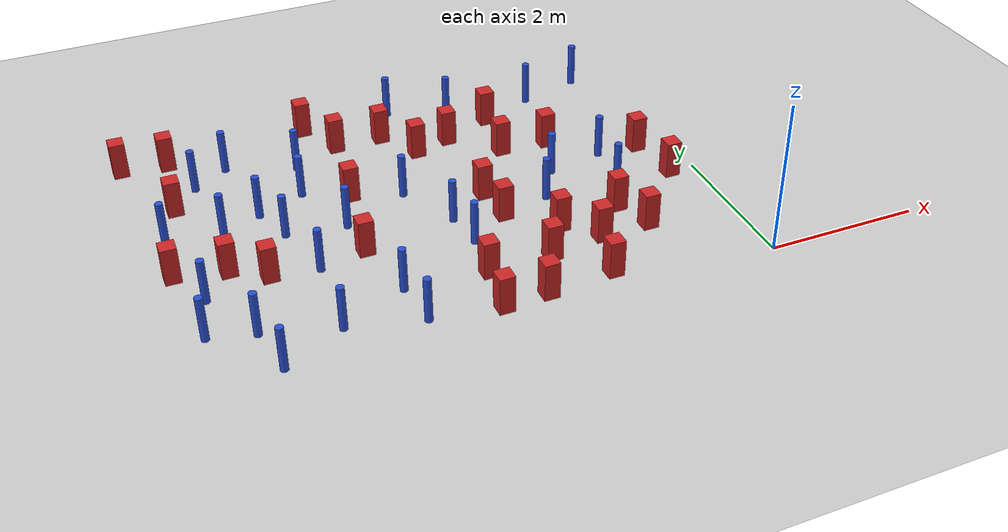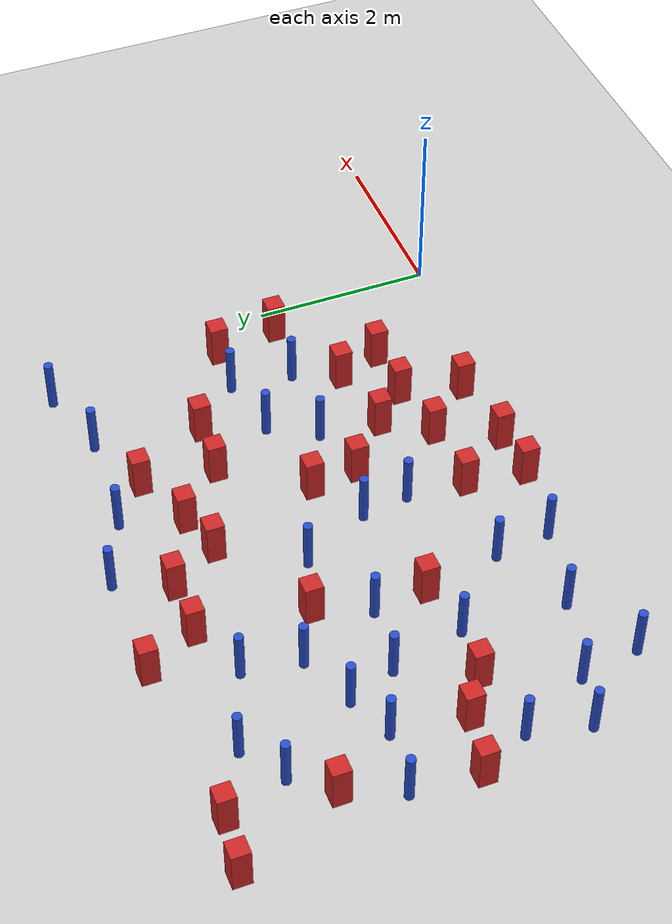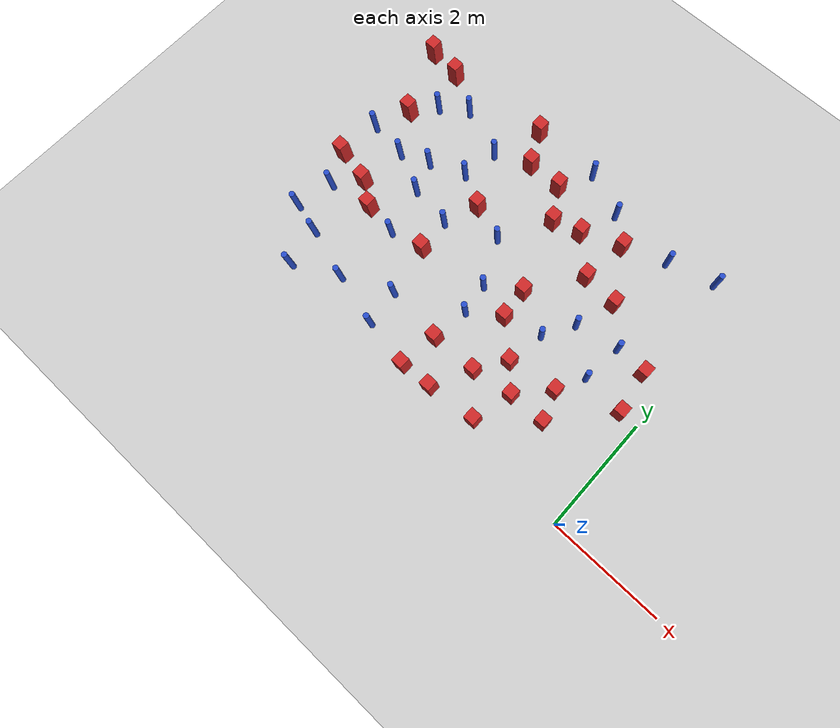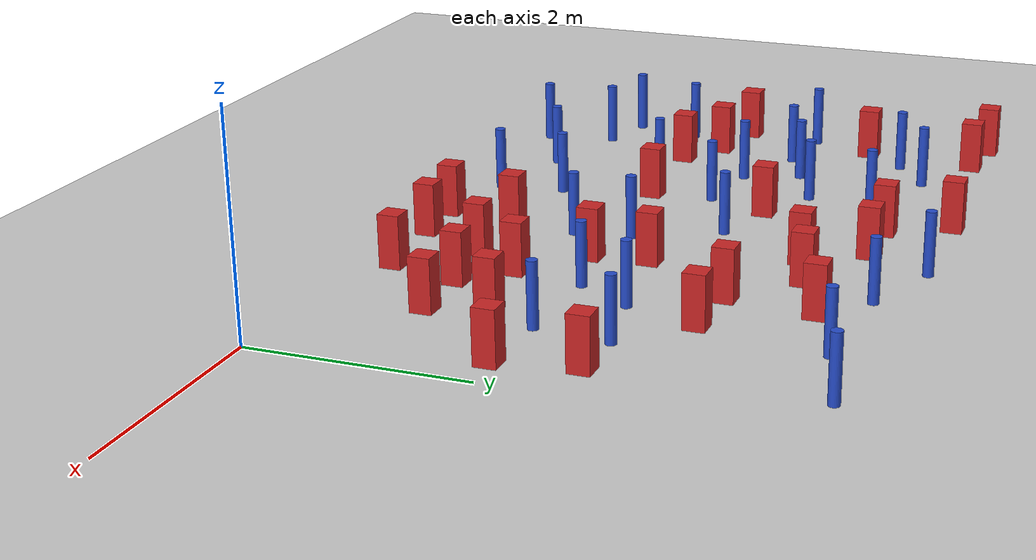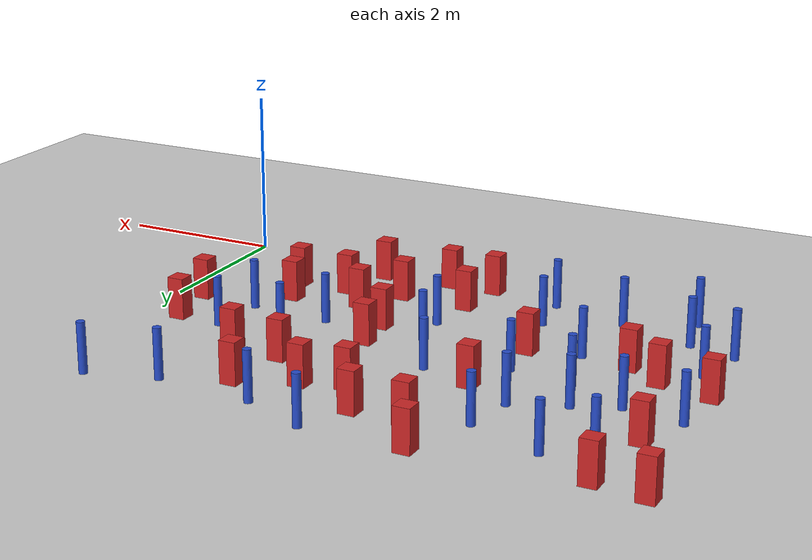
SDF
<sdf version="1.6">
 <world name="default">
  <model name="ground_plane">
   <static>1</static>
   <link name="link">
    <collision name="collision">
     <geometry><plane><normal>0 0 1</normal><size>100 100</size></plane></geometry>
     <surface><friction><ode><mu>100</mu><mu2>50</mu2></ode></friction></surface>
    </collision>
    <visual name="visual">
     <cast_shadows>0</cast_shadows>
     <geometry><plane><normal>0 0 1</normal><size>100 100</size></plane></geometry>
     <material>
      <ambient>1.0 1.0 1.0 1.0</ambient>
      <diffuse>0.8 0.8 0.8 1.0</diffuse>
      <specular>0.01 0.01 0.01 1.000000</specular>
     </material>
    </visual>
   </link>
  </model>
  <model name="pole_obstacle2">
   <static>true</static>
   <pose>-4.29656376117 0.3883590733 2.88873142074e-08 -9.90536689981e-09 4.60219948986e-07 -1.20965994962e-07</pose>
   <link name="link">
    <pose>0 0 0.3 0 -0 0</pose>
    <inertial>
     <mass>1</mass>
     <inertia><ixx>0.145833</ixx><ixy>0</ixy><ixz>0</ixz><iyy>0.145833</iyy><iyz>0</iyz><izz>0.125</izz></inertia>
    </inertial>
    <collision name="collision">
     <geometry><cylinder><radius>0.05</radius><length>.6</length></cylinder></geometry>
    </collision>
    <visual name="visual">
     <geometry><cylinder><radius>0.05</radius><length>.6</length></cylinder></geometry>
     <material>
      <script><name>Gazebo/Blue</name><uri>file://media/materials/scripts/gazebo.material</uri></script>
     </material>
    </visual>
   </link>
  </model>
  <model name="pole_obstacle7">
   <static>true</static>
   <pose>-5.55489222727 3.11626111956 2.88873142074e-08 -9.90536690245e-09 4.6021994898e-07 -1.20965994966e-07</pose>
   <link name="link">
    <pose>0 0 0.3 0 -0 0</pose>
    <inertial>
     <mass>1</mass>
     <inertia><ixx>0.145833</ixx><ixy>0</ixy><ixz>0</ixz><iyy>0.145833</iyy><iyz>0</iyz><izz>0.125</izz></inertia>
    </inertial>
    <collision name="collision">
     <geometry><cylinder><radius>0.05</radius><length>.6</length></cylinder></geometry>
    </collision>
    <visual name="visual">
     <geometry><cylinder><radius>0.05</radius><length>.6</length></cylinder></geometry>
     <material>
      <script><name>Gazebo/Blue</name><uri>file://media/materials/scripts/gazebo.material</uri></script>
     </material>
    </visual>
   </link>
  </model>
  <model name="square_post_obstacle10">
   <static>true</static>
   <pose>-4.55760182171 1.88871491998 8.22691968438e-08 7.2212513382e-06 -7.54495500217e-07 2.29674213826e-05</pose>
   <link name="link">
    <pose>0 0 0.25 0 -0 0</pose>
    <inertial>
     <mass>100</mass>
     <inertia>
      <ixx>0.166667</ixx>
      <ixy>0</ixy>
      <ixz>0</ixz>
      <iyy>0.166667</iyy>
      <iyz>0</iyz>
      <izz>0.166667</izz>
     </inertia>
    </inertial>
    <collision name="collision"><geometry><box><size>.2 .2 .5</size></box></geometry></collision>
    <visual name="visual">
     <geometry><box><size>.2 .2 .5</size></box></geometry>
     <material>
      <script><name>Gazebo/Red</name><uri>file://media/materials/scripts/gazebo.material</uri></script>
     </material>
    </visual>
   </link>
  </model>
  <model name="square_post_obstacle11">
   <static>true</static>
   <pose>-1.1652866961 1.04216273189 8.22691968438e-08 7.2212513382e-06 -7.54495500217e-07 2.29674213826e-05</pose>
   <link name="link">
    <pose>0 0 0.25 0 -0 0</pose>
    <inertial>
     <mass>100</mass>
     <inertia>
      <ixx>0.166667</ixx>
      <ixy>0</ixy>
      <ixz>0</ixz>
      <iyy>0.166667</iyy>
      <iyz>0</iyz>
      <izz>0.166667</izz>
     </inertia>
    </inertial>
    <collision name="collision"><geometry><box><size>.2 .2 .5</size></box></geometry></collision>
    <visual name="visual">
     <geometry><box><size>.2 .2 .5</size></box></geometry>
     <material>
      <script><name>Gazebo/Red</name><uri>file://media/materials/scripts/gazebo.material</uri></script>
     </material>
    </visual>
   </link>
  </model>
  <model name="square_post_obstacle15">
   <static>true</static>
   <pose>-4.22114828094 4.25865756777 8.22691968438e-08 7.2212513382e-06 -7.54495500217e-07 2.29674213826e-05</pose>
   <link name="link">
    <pose>0 0 0.25 0 -0 0</pose>
    <inertial>
     <mass>100</mass>
     <inertia>
      <ixx>0.166667</ixx>
      <ixy>0</ixy>
      <ixz>0</ixz>
      <iyy>0.166667</iyy>
      <iyz>0</iyz>
      <izz>0.166667</izz>
     </inertia>
    </inertial>
    <collision name="collision"><geometry><box><size>.2 .2 .5</size></box></geometry></collision>
    <visual name="visual">
     <geometry><box><size>.2 .2 .5</size></box></geometry>
     <material>
      <script><name>Gazebo/Red</name><uri>file://media/materials/scripts/gazebo.material</uri></script>
     </material>
    </visual>
   </link>
  </model>
  <model name="pole_obstacle9">
   <static>true</static>
   <pose>-6.12231987147 0.901458141551 2.88873142074e-08 -9.90536689837e-09 4.60219948989e-07 -1.2096599496e-07</pose>
   <link name="link">
    <pose>0 0 0.3 0 -0 0</pose>
    <inertial>
     <mass>1</mass>
     <inertia><ixx>0.145833</ixx><ixy>0</ixy><ixz>0</ixz><iyy>0.145833</iyy><iyz>0</iyz><izz>0.125</izz></inertia>
    </inertial>
    <collision name="collision">
     <geometry><cylinder><radius>0.05</radius><length>.6</length></cylinder></geometry>
    </collision>
    <visual name="visual">
     <geometry><cylinder><radius>0.05</radius><length>.6</length></cylinder></geometry>
     <material>
      <script><name>Gazebo/Blue</name><uri>file://media/materials/scripts/gazebo.material</uri></script>
     </material>
    </visual>
   </link>
  </model>
  <model name="square_post_obstacle22">
   <static>true</static>
   <pose>-3.34970845487 0.912269692501 8.22691968438e-08 7.2212513382e-06 -7.54495500217e-07 2.29674213826e-05</pose>
   <link name="link">
    <pose>0 0 0.25 0 -0 0</pose>
    <inertial>
     <mass>100</mass>
     <inertia>
      <ixx>0.166667</ixx>
      <ixy>0</ixy>
      <ixz>0</ixz>
      <iyy>0.166667</iyy>
      <iyz>0</iyz>
      <izz>0.166667</izz>
     </inertia>
    </inertial>
    <collision name="collision"><geometry><box><size>.2 .2 .5</size></box></geometry></collision>
    <visual name="visual">
     <geometry><box><size>.2 .2 .5</size></box></geometry>
     <material>
      <script><name>Gazebo/Red</name><uri>file://media/materials/scripts/gazebo.material</uri></script>
     </material>
    </visual>
   </link>
  </model>
  <model name="pole_obstacle16">
   <static>true</static>
   <pose>-5.71531526968 4.32091101755 2.88873142074e-08 -9.90536690842e-09 4.60219948965e-07 -1.20965994976e-07</pose>
   <link name="link">
    <pose>0 0 0.3 0 -0 0</pose>
    <inertial>
     <mass>1</mass>
     <inertia><ixx>0.145833</ixx><ixy>0</ixy><ixz>0</ixz><iyy>0.145833</iyy><iyz>0</iyz><izz>0.125</izz></inertia>
    </inertial>
    <collision name="collision">
     <geometry><cylinder><radius>0.05</radius><length>.6</length></cylinder></geometry>
    </collision>
    <visual name="visual">
     <geometry><cylinder><radius>0.05</radius><length>.6</length></cylinder></geometry>
     <material>
      <script><name>Gazebo/Blue</name><uri>file://media/materials/scripts/gazebo.material</uri></script>
     </material>
    </visual>
   </link>
  </model>
  <model name="square_post_obstacle24">
   <static>true</static>
   <pose>-2.76721176571 3.85604177541 8.22691968438e-08 7.2212513382e-06 -7.54495500217e-07 2.29674213826e-05</pose>
   <link name="link">
    <pose>0 0 0.25 0 -0 0</pose>
    <inertial>
     <mass>100</mass>
     <inertia>
      <ixx>0.166667</ixx>
      <ixy>0</ixy>
      <ixz>0</ixz>
      <iyy>0.166667</iyy>
      <iyz>0</iyz>
      <izz>0.166667</izz>
     </inertia>
    </inertial>
    <collision name="collision"><geometry><box><size>.2 .2 .5</size></box></geometry></collision>
    <visual name="visual">
     <geometry><box><size>.2 .2 .5</size></box></geometry>
     <material>
      <script><name>Gazebo/Red</name><uri>file://media/materials/scripts/gazebo.material</uri></script>
     </material>
    </visual>
   </link>
  </model>
  <model name="square_post_obstacle26">
   <static>true</static>
   <pose>-1.9964140701 0.348953168944 8.22691968438e-08 7.2212513382e-06 -7.54495500217e-07 2.29674213826e-05</pose>
   <link name="link">
    <pose>0 0 0.25 0 -0 0</pose>
    <inertial>
     <mass>100</mass>
     <inertia>
      <ixx>0.166667</ixx>
      <ixy>0</ixy>
      <ixz>0</ixz>
      <iyy>0.166667</iyy>
      <iyz>0</iyz>
      <izz>0.166667</izz>
     </inertia>
    </inertial>
    <collision name="collision"><geometry><box><size>.2 .2 .5</size></box></geometry></collision>
    <visual name="visual">
     <geometry><box><size>.2 .2 .5</size></box></geometry>
     <material>
      <script><name>Gazebo/Red</name><uri>file://media/materials/scripts/gazebo.material</uri></script>
     </material>
    </visual>
   </link>
  </model>
  <model name="pole_obstacle19">
   <static>true</static>
   <pose>-6.52908301461 1.70520439108 2.88873142074e-08 -9.90536689445e-09 4.60219948999e-07 -1.20965994956e-07</pose>
   <link name="link">
    <pose>0 0 0.3 0 -0 0</pose>
    <inertial>
     <mass>1</mass>
     <inertia><ixx>0.145833</ixx><ixy>0</ixy><ixz>0</ixz><iyy>0.145833</iyy><iyz>0</iyz><izz>0.125</izz></inertia>
    </inertial>
    <collision name="collision">
     <geometry><cylinder><radius>0.05</radius><length>.6</length></cylinder></geometry>
    </collision>
    <visual name="visual">
     <geometry><cylinder><radius>0.05</radius><length>.6</length></cylinder></geometry>
     <material>
      <script><name>Gazebo/Blue</name><uri>file://media/materials/scripts/gazebo.material</uri></script>
     </material>
    </visual>
   </link>
  </model>
  <model name="pole_obstacle27">
   <static>true</static>
   <pose>-1.78002003431 2.59226386189 2.88873142074e-08 -9.90536689791e-09 4.6021994899e-07 -1.20965994959e-07</pose>
   <link name="link">
    <pose>0 0 0.3 0 -0 0</pose>
    <inertial>
     <mass>1</mass>
     <inertia><ixx>0.145833</ixx><ixy>0</ixy><ixz>0</ixz><iyy>0.145833</iyy><iyz>0</iyz><izz>0.125</izz></inertia>
    </inertial>
    <collision name="collision">
     <geometry><cylinder><radius>0.05</radius><length>.6</length></cylinder></geometry>
    </collision>
    <visual name="visual">
     <geometry><cylinder><radius>0.05</radius><length>.6</length></cylinder></geometry>
     <material>
      <script><name>Gazebo/Blue</name><uri>file://media/materials/scripts/gazebo.material</uri></script>
     </material>
    </visual>
   </link>
  </model>
  <model name="pole_obstacle41">
   <static>true</static>
   <pose>-5.35954485996 2.58659841658 2.88873142074e-08 -9.90536690245e-09 4.6021994898e-07 -1.20965994966e-07</pose>
   <link name="link">
    <pose>0 0 0.3 0 -0 0</pose>
    <inertial>
     <mass>1</mass>
     <inertia><ixx>0.145833</ixx><ixy>0</ixy><ixz>0</ixz><iyy>0.145833</iyy><iyz>0</iyz><izz>0.125</izz></inertia>
    </inertial>
    <collision name="collision">
     <geometry><cylinder><radius>0.05</radius><length>.6</length></cylinder></geometry>
    </collision>
    <visual name="visual">
     <geometry><cylinder><radius>0.05</radius><length>.6</length></cylinder></geometry>
     <material>
      <script><name>Gazebo/Blue</name><uri>file://media/materials/scripts/gazebo.material</uri></script>
     </material>
    </visual>
   </link>
  </model>
  <model name="pole_obstacle42">
   <static>true</static>
   <pose>-0.520954247757 4.65257949036 2.88873142074e-08 -9.90536689526e-09 4.60219948997e-07 -1.20965994955e-07</pose>
   <link name="link">
    <pose>0 0 0.3 0 -0 0</pose>
    <inertial>
     <mass>1</mass>
     <inertia><ixx>0.145833</ixx><ixy>0</ixy><ixz>0</ixz><iyy>0.145833</iyy><iyz>0</iyz><izz>0.125</izz></inertia>
    </inertial>
    <collision name="collision">
     <geometry><cylinder><radius>0.05</radius><length>.6</length></cylinder></geometry>
    </collision>
    <visual name="visual">
     <geometry><cylinder><radius>0.05</radius><length>.6</length></cylinder></geometry>
     <material>
      <script><name>Gazebo/Blue</name><uri>file://media/materials/scripts/gazebo.material</uri></script>
     </material>
    </visual>
   </link>
  </model>
  <model name="square_post_obstacle45">
   <static>true</static>
   <pose>-6.99369727493 4.77667573287 8.22691968438e-08 7.22125133819e-06 -7.54495500217e-07 2.29674213826e-05</pose>
   <link name="link">
    <pose>0 0 0.25 0 -0 0</pose>
    <inertial>
     <mass>100</mass>
     <inertia>
      <ixx>0.166667</ixx>
      <ixy>0</ixy>
      <ixz>0</ixz>
      <iyy>0.166667</iyy>
      <iyz>0</iyz>
      <izz>0.166667</izz>
     </inertia>
    </inertial>
    <collision name="collision"><geometry><box><size>.2 .2 .5</size></box></geometry></collision>
    <visual name="visual">
     <geometry><box><size>.2 .2 .5</size></box></geometry>
     <material>
      <script><name>Gazebo/Red</name><uri>file://media/materials/scripts/gazebo.material</uri></script>
     </material>
    </visual>
   </link>
  </model>
  <model name="square_post_obstacle47">
   <static>true</static>
   <pose>-2.18865689238 1.42225771255 8.22691968438e-08 7.2212513382e-06 -7.54495500217e-07 2.29674213826e-05</pose>
   <link name="link">
    <pose>0 0 0.25 0 -0 0</pose>
    <inertial>
     <mass>100</mass>
     <inertia>
      <ixx>0.166667</ixx>
      <ixy>0</ixy>
      <ixz>0</ixz>
      <iyy>0.166667</iyy>
      <iyz>0</iyz>
      <izz>0.166667</izz>
     </inertia>
    </inertial>
    <collision name="collision"><geometry><box><size>.2 .2 .5</size></box></geometry></collision>
    <visual name="visual">
     <geometry><box><size>.2 .2 .5</size></box></geometry>
     <material>
      <script><name>Gazebo/Red</name><uri>file://media/materials/scripts/gazebo.material</uri></script>
     </material>
    </visual>
   </link>
  </model>
  <model name="pole_obstacle50">
   <static>true</static>
   <pose>-4.834128976 3.99065446787 2.88873142074e-08 -9.9053669014e-09 4.60219948982e-07 -1.20965994965e-07</pose>
   <link name="link">
    <pose>0 0 0.3 0 -0 0</pose>
    <inertial>
     <mass>1</mass>
     <inertia><ixx>0.145833</ixx><ixy>0</ixy><ixz>0</ixz><iyy>0.145833</iyy><iyz>0</iyz><izz>0.125</izz></inertia>
    </inertial>
    <collision name="collision">
     <geometry><cylinder><radius>0.05</radius><length>.6</length></cylinder></geometry>
    </collision>
    <visual name="visual">
     <geometry><cylinder><radius>0.05</radius><length>.6</length></cylinder></geometry>
     <material>
      <script><name>Gazebo/Blue</name><uri>file://media/materials/scripts/gazebo.material</uri></script>
     </material>
    </visual>
   </link>
  </model>
  <model name="pole_obstacle58">
   <static>true</static>
   <pose>-4.37397847794 1.01400022209 2.88873142074e-08 -9.90536689422e-09 4.60219948999e-07 -1.20965994955e-07</pose>
   <link name="link">
    <pose>0 0 0.3 0 -0 0</pose>
    <inertial>
     <mass>1</mass>
     <inertia><ixx>0.145833</ixx><ixy>0</ixy><ixz>0</ixz><iyy>0.145833</iyy><iyz>0</iyz><izz>0.125</izz></inertia>
    </inertial>
    <collision name="collision">
     <geometry><cylinder><radius>0.05</radius><length>.6</length></cylinder></geometry>
    </collision>
    <visual name="visual">
     <geometry><cylinder><radius>0.05</radius><length>.6</length></cylinder></geometry>
     <material>
      <script><name>Gazebo/Blue</name><uri>file://media/materials/scripts/gazebo.material</uri></script>
     </material>
    </visual>
   </link>
  </model>
  <model name="pole_obstacle60">
   <static>true</static>
   <pose>-3.30121699339 4.83204099583 2.88873142074e-08 -9.90536692062e-09 4.60219948937e-07 -1.20965994985e-07</pose>
   <link name="link">
    <pose>0 0 0.3 0 -0 0</pose>
    <inertial>
     <mass>1</mass>
     <inertia><ixx>0.145833</ixx><ixy>0</ixy><ixz>0</ixz><iyy>0.145833</iyy><iyz>0</iyz><izz>0.125</izz></inertia>
    </inertial>
    <collision name="collision">
     <geometry><cylinder><radius>0.05</radius><length>.6</length></cylinder></geometry>
    </collision>
    <visual name="visual">
     <geometry><cylinder><radius>0.05</radius><length>.6</length></cylinder></geometry>
     <material>
      <script><name>Gazebo/Blue</name><uri>file://media/materials/scripts/gazebo.material</uri></script>
     </material>
    </visual>
   </link>
  </model>
  <model name="square_post_obstacle64">
   <static>true</static>
   <pose>-3.25678186688 3.71199360506 8.22691968438e-08 7.2212513382e-06 -7.54495500217e-07 2.29674213826e-05</pose>
   <link name="link">
    <pose>0 0 0.25 0 -0 0</pose>
    <inertial>
     <mass>100</mass>
     <inertia>
      <ixx>0.166667</ixx>
      <ixy>0</ixy>
      <ixz>0</ixz>
      <iyy>0.166667</iyy>
      <iyz>0</iyz>
      <izz>0.166667</izz>
     </inertia>
    </inertial>
    <collision name="collision"><geometry><box><size>.2 .2 .5</size></box></geometry></collision>
    <visual name="visual">
     <geometry><box><size>.2 .2 .5</size></box></geometry>
     <material>
      <script><name>Gazebo/Red</name><uri>file://media/materials/scripts/gazebo.material</uri></script>
     </material>
    </visual>
   </link>
  </model>
  <model name="square_post_obstacle65">
   <static>true</static>
   <pose>-5.74604161286 1.84038034705 8.22691968438e-08 7.2212513382e-06 -7.54495500217e-07 2.29674213826e-05</pose>
   <link name="link">
    <pose>0 0 0.25 0 -0 0</pose>
    <inertial>
     <mass>100</mass>
     <inertia>
      <ixx>0.166667</ixx>
      <ixy>0</ixy>
      <ixz>0</ixz>
      <iyy>0.166667</iyy>
      <iyz>0</iyz>
      <izz>0.166667</izz>
     </inertia>
    </inertial>
    <collision name="collision"><geometry><box><size>.2 .2 .5</size></box></geometry></collision>
    <visual name="visual">
     <geometry><box><size>.2 .2 .5</size></box></geometry>
     <material>
      <script><name>Gazebo/Red</name><uri>file://media/materials/scripts/gazebo.material</uri></script>
     </material>
    </visual>
   </link>
  </model>
  <model name="square_post_obstacle66">
   <static>true</static>
   <pose>-0.478024407436 2.69612305971 8.22691968438e-08 7.2212513382e-06 -7.54495500217e-07 2.29674213826e-05</pose>
   <link name="link">
    <pose>0 0 0.25 0 -0 0</pose>
    <inertial>
     <mass>100</mass>
     <inertia>
      <ixx>0.166667</ixx>
      <ixy>0</ixy>
      <ixz>0</ixz>
      <iyy>0.166667</iyy>
      <iyz>0</iyz>
      <izz>0.166667</izz>
     </inertia>
    </inertial>
    <collision name="collision"><geometry><box><size>.2 .2 .5</size></box></geometry></collision>
    <visual name="visual">
     <geometry><box><size>.2 .2 .5</size></box></geometry>
     <material>
      <script><name>Gazebo/Red</name><uri>file://media/materials/scripts/gazebo.material</uri></script>
     </material>
    </visual>
   </link>
  </model>
  <model name="square_post_obstacle68">
   <static>true</static>
   <pose>-2.19494234033 3.32253606707 8.22691968438e-08 7.2212513382e-06 -7.54495500217e-07 2.29674213826e-05</pose>
   <link name="link">
    <pose>0 0 0.25 0 -0 0</pose>
    <inertial>
     <mass>100</mass>
     <inertia>
      <ixx>0.166667</ixx>
      <ixy>0</ixy>
      <ixz>0</ixz>
      <iyy>0.166667</iyy>
      <iyz>0</iyz>
      <izz>0.166667</izz>
     </inertia>
    </inertial>
    <collision name="collision"><geometry><box><size>.2 .2 .5</size></box></geometry></collision>
    <visual name="visual">
     <geometry><box><size>.2 .2 .5</size></box></geometry>
     <material>
      <script><name>Gazebo/Red</name><uri>file://media/materials/scripts/gazebo.material</uri></script>
     </material>
    </visual>
   </link>
  </model>
  <model name="square_post_obstacle70">
   <static>true</static>
   <pose>-6.39947339818 4.69861001248 8.22691968438e-08 7.2212513382e-06 -7.54495500217e-07 2.29674213826e-05</pose>
   <link name="link">
    <pose>0 0 0.25 0 -0 0</pose>
    <inertial>
     <mass>100</mass>
     <inertia>
      <ixx>0.166667</ixx>
      <ixy>0</ixy>
      <ixz>0</ixz>
      <iyy>0.166667</iyy>
      <iyz>0</iyz>
      <izz>0.166667</izz>
     </inertia>
    </inertial>
    <collision name="collision"><geometry><box><size>.2 .2 .5</size></box></geometry></collision>
    <visual name="visual">
     <geometry><box><size>.2 .2 .5</size></box></geometry>
     <material>
      <script><name>Gazebo/Red</name><uri>file://media/materials/scripts/gazebo.material</uri></script>
     </material>
    </visual>
   </link>
  </model>
  <model name="square_post_obstacle71">
   <static>true</static>
   <pose>-2.74436251999 1.91724149082 8.22691968438e-08 7.2212513382e-06 -7.54495500217e-07 2.29674213826e-05</pose>
   <link name="link">
    <pose>0 0 0.25 0 -0 0</pose>
    <inertial>
     <mass>100</mass>
     <inertia>
      <ixx>0.166667</ixx>
      <ixy>0</ixy>
      <ixz>0</ixz>
      <iyy>0.166667</iyy>
      <iyz>0</iyz>
      <izz>0.166667</izz>
     </inertia>
    </inertial>
    <collision name="collision"><geometry><box><size>.2 .2 .5</size></box></geometry></collision>
    <visual name="visual">
     <geometry><box><size>.2 .2 .5</size></box></geometry>
     <material>
      <script><name>Gazebo/Red</name><uri>file://media/materials/scripts/gazebo.material</uri></script>
     </material>
    </visual>
   </link>
  </model>
  <model name="square_post_obstacle74">
   <static>true</static>
   <pose>-2.86417675779 0.274677837507 8.22691968438e-08 7.2212513382e-06 -7.54495500217e-07 2.29674213826e-05</pose>
   <link name="link">
    <pose>0 0 0.25 0 -0 0</pose>
    <inertial>
     <mass>100</mass>
     <inertia>
      <ixx>0.166667</ixx>
      <ixy>0</ixy>
      <ixz>0</ixz>
      <iyy>0.166667</iyy>
      <iyz>0</iyz>
      <izz>0.166667</izz>
     </inertia>
    </inertial>
    <collision name="collision"><geometry><box><size>.2 .2 .5</size></box></geometry></collision>
    <visual name="visual">
     <geometry><box><size>.2 .2 .5</size></box></geometry>
     <material>
      <script><name>Gazebo/Red</name><uri>file://media/materials/scripts/gazebo.material</uri></script>
     </material>
    </visual>
   </link>
  </model>
  <model name="pole_obstacle69">
   <static>true</static>
   <pose>-6.05316054666 2.91015911283 2.88873142074e-08 -9.90536690245e-09 4.6021994898e-07 -1.20965994966e-07</pose>
   <link name="link">
    <pose>0 0 0.3 0 -0 0</pose>
    <inertial>
     <mass>1</mass>
     <inertia><ixx>0.145833</ixx><ixy>0</ixy><ixz>0</ixz><iyy>0.145833</iyy><iyz>0</iyz><izz>0.125</izz></inertia>
    </inertial>
    <collision name="collision">
     <geometry><cylinder><radius>0.05</radius><length>.6</length></cylinder></geometry>
    </collision>
    <visual name="visual">
     <geometry><cylinder><radius>0.05</radius><length>.6</length></cylinder></geometry>
     <material>
      <script><name>Gazebo/Blue</name><uri>file://media/materials/scripts/gazebo.material</uri></script>
     </material>
    </visual>
   </link>
  </model>
  <model name="pole_obstacle71">
   <static>true</static>
   <pose>-1.09667490801 2.03350989312 2.88873142074e-08 -9.9053669019e-09 4.60219948981e-07 -1.20965994965e-07</pose>
   <link name="link">
    <pose>0 0 0.3 0 -0 0</pose>
    <inertial>
     <mass>1</mass>
     <inertia><ixx>0.145833</ixx><ixy>0</ixy><ixz>0</ixz><iyy>0.145833</iyy><iyz>0</iyz><izz>0.125</izz></inertia>
    </inertial>
    <collision name="collision">
     <geometry><cylinder><radius>0.05</radius><length>.6</length></cylinder></geometry>
    </collision>
    <visual name="visual">
     <geometry><cylinder><radius>0.05</radius><length>.6</length></cylinder></geometry>
     <material>
      <script><name>Gazebo/Blue</name><uri>file://media/materials/scripts/gazebo.material</uri></script>
     </material>
    </visual>
   </link>
  </model>
  <model name="square_post_obstacle80">
   <static>true</static>
   <pose>-4.52187574968 4.83491491524 8.22691968438e-08 7.22125133819e-06 -7.54495500217e-07 2.29674213826e-05</pose>
   <link name="link">
    <pose>0 0 0.25 0 -0 0</pose>
    <inertial>
     <mass>100</mass>
     <inertia>
      <ixx>0.166667</ixx>
      <ixy>0</ixy>
      <ixz>0</ixz>
      <iyy>0.166667</iyy>
      <iyz>0</iyz>
      <izz>0.166667</izz>
     </inertia>
    </inertial>
    <collision name="collision"><geometry><box><size>.2 .2 .5</size></box></geometry></collision>
    <visual name="visual">
     <geometry><box><size>.2 .2 .5</size></box></geometry>
     <material>
      <script><name>Gazebo/Red</name><uri>file://media/materials/scripts/gazebo.material</uri></script>
     </material>
    </visual>
   </link>
  </model>
  <model name="pole_obstacle86">
   <static>true</static>
   <pose>-5.21949666472 0.625245267435 2.88873142074e-08 -9.90536689837e-09 4.60219948989e-07 -1.2096599496e-07</pose>
   <link name="link">
    <pose>0 0 0.3 0 -0 0</pose>
    <inertial>
     <mass>1</mass>
     <inertia><ixx>0.145833</ixx><ixy>0</ixy><ixz>0</ixz><iyy>0.145833</iyy><iyz>0</iyz><izz>0.125</izz></inertia>
    </inertial>
    <collision name="collision">
     <geometry><cylinder><radius>0.05</radius><length>.6</length></cylinder></geometry>
    </collision>
    <visual name="visual">
     <geometry><cylinder><radius>0.05</radius><length>.6</length></cylinder></geometry>
     <material>
      <script><name>Gazebo/Blue</name><uri>file://media/materials/scripts/gazebo.material</uri></script>
     </material>
    </visual>
   </link>
  </model>
  <model name="pole_obstacle87">
   <static>true</static>
   <pose>-6.1735670745 4.01386568796 2.88873142074e-08 -9.90536690763e-09 4.60219948967e-07 -1.20965994975e-07</pose>
   <link name="link">
    <pose>0 0 0.3 0 -0 0</pose>
    <inertial>
     <mass>1</mass>
     <inertia><ixx>0.145833</ixx><ixy>0</ixy><ixz>0</ixz><iyy>0.145833</iyy><iyz>0</iyz><izz>0.125</izz></inertia>
    </inertial>
    <collision name="collision">
     <geometry><cylinder><radius>0.05</radius><length>.6</length></cylinder></geometry>
    </collision>
    <visual name="visual">
     <geometry><cylinder><radius>0.05</radius><length>.6</length></cylinder></geometry>
     <material>
      <script><name>Gazebo/Blue</name><uri>file://media/materials/scripts/gazebo.material</uri></script>
     </material>
    </visual>
   </link>
  </model>
  <model name="pole_obstacle96">
   <static>true</static>
   <pose>-5.15503563026 1.75675305372 2.88873142074e-08 -9.90536689445e-09 4.60219948999e-07 -1.20965994956e-07</pose>
   <link name="link">
    <pose>0 0 0.3 0 -0 0</pose>
    <inertial>
     <mass>1</mass>
     <inertia><ixx>0.145833</ixx><ixy>0</ixy><ixz>0</ixz><iyy>0.145833</iyy><iyz>0</iyz><izz>0.125</izz></inertia>
    </inertial>
    <collision name="collision">
     <geometry><cylinder><radius>0.05</radius><length>.6</length></cylinder></geometry>
    </collision>
    <visual name="visual">
     <geometry><cylinder><radius>0.05</radius><length>.6</length></cylinder></geometry>
     <material>
      <script><name>Gazebo/Blue</name><uri>file://media/materials/scripts/gazebo.material</uri></script>
     </material>
    </visual>
   </link>
  </model>
  <model name="square_post_obstacle102">
   <static>true</static>
   <pose>-4.3800832271 3.06688688276 8.22691968438e-08 7.2212513382e-06 -7.54495500217e-07 2.29674213826e-05</pose>
   <link name="link">
    <pose>0 0 0.25 0 -0 0</pose>
    <inertial>
     <mass>100</mass>
     <inertia>
      <ixx>0.166667</ixx>
      <ixy>0</ixy>
      <ixz>0</ixz>
      <iyy>0.166667</iyy>
      <iyz>0</iyz>
      <izz>0.166667</izz>
     </inertia>
    </inertial>
    <collision name="collision"><geometry><box><size>.2 .2 .5</size></box></geometry></collision>
    <visual name="visual">
     <geometry><box><size>.2 .2 .5</size></box></geometry>
     <material>
      <script><name>Gazebo/Red</name><uri>file://media/materials/scripts/gazebo.material</uri></script>
     </material>
    </visual>
   </link>
  </model>
  <model name="square_post_obstacle103">
   <static>true</static>
   <pose>-1.34354317452 1.54250365772 8.22691968438e-08 7.2212513382e-06 -7.54495500217e-07 2.29674213826e-05</pose>
   <link name="link">
    <pose>0 0 0.25 0 -0 0</pose>
    <inertial>
     <mass>100</mass>
     <inertia>
      <ixx>0.166667</ixx>
      <ixy>0</ixy>
      <ixz>0</ixz>
      <iyy>0.166667</iyy>
      <iyz>0</iyz>
      <izz>0.166667</izz>
     </inertia>
    </inertial>
    <collision name="collision"><geometry><box><size>.2 .2 .5</size></box></geometry></collision>
    <visual name="visual">
     <geometry><box><size>.2 .2 .5</size></box></geometry>
     <material>
      <script><name>Gazebo/Red</name><uri>file://media/materials/scripts/gazebo.material</uri></script>
     </material>
    </visual>
   </link>
  </model>
  <model name="square_post_obstacle111">
   <static>true</static>
   <pose>-2.52525627827 0.925180879162 8.22691968438e-08 7.2212513382e-06 -7.54495500217e-07 2.29674213826e-05</pose>
   <link name="link">
    <pose>0 0 0.25 0 -0 0</pose>
    <inertial>
     <mass>100</mass>
     <inertia>
      <ixx>0.166667</ixx>
      <ixy>0</ixy>
      <ixz>0</ixz>
      <iyy>0.166667</iyy>
      <iyz>0</iyz>
      <izz>0.166667</izz>
     </inertia>
    </inertial>
    <collision name="collision"><geometry><box><size>.2 .2 .5</size></box></geometry></collision>
    <visual name="visual">
     <geometry><box><size>.2 .2 .5</size></box></geometry>
     <material>
      <script><name>Gazebo/Red</name><uri>file://media/materials/scripts/gazebo.material</uri></script>
     </material>
    </visual>
   </link>
  </model>
  <model name="pole_obstacle134">
   <static>true</static>
   <pose>-6.74597372147 3.00563712016 2.88873142074e-08 -9.90536690245e-09 4.6021994898e-07 -1.20965994966e-07</pose>
   <link name="link">
    <pose>0 0 0.3 0 -0 0</pose>
    <inertial>
     <mass>1</mass>
     <inertia><ixx>0.145833</ixx><ixy>0</ixy><ixz>0</ixz><iyy>0.145833</iyy><iyz>0</iyz><izz>0.125</izz></inertia>
    </inertial>
    <collision name="collision">
     <geometry><cylinder><radius>0.05</radius><length>.6</length></cylinder></geometry>
    </collision>
    <visual name="visual">
     <geometry><cylinder><radius>0.05</radius><length>.6</length></cylinder></geometry>
     <material>
      <script><name>Gazebo/Blue</name><uri>file://media/materials/scripts/gazebo.material</uri></script>
     </material>
    </visual>
   </link>
  </model>
  <model name="square_post_obstacle121">
   <static>true</static>
   <pose>-3.59180341937 4.25133088309 8.22691968438e-08 7.2212513382e-06 -7.54495500217e-07 2.29674213826e-05</pose>
   <link name="link">
    <pose>0 0 0.25 0 -0 0</pose>
    <inertial>
     <mass>100</mass>
     <inertia>
      <ixx>0.166667</ixx>
      <ixy>0</ixy>
      <ixz>0</ixz>
      <iyy>0.166667</iyy>
      <iyz>0</iyz>
      <izz>0.166667</izz>
     </inertia>
    </inertial>
    <collision name="collision"><geometry><box><size>.2 .2 .5</size></box></geometry></collision>
    <visual name="visual">
     <geometry><box><size>.2 .2 .5</size></box></geometry>
     <material>
      <script><name>Gazebo/Red</name><uri>file://media/materials/scripts/gazebo.material</uri></script>
     </material>
    </visual>
   </link>
  </model>
  <model name="pole_obstacle148">
   <static>true</static>
   <pose>-2.08566462704 2.07756844883 2.88873142074e-08 -9.90536690232e-09 4.6021994898e-07 -1.20965994968e-07</pose>
   <link name="link">
    <pose>0 0 0.3 0 -0 0</pose>
    <inertial>
     <mass>1</mass>
     <inertia><ixx>0.145833</ixx><ixy>0</ixy><ixz>0</ixz><iyy>0.145833</iyy><iyz>0</iyz><izz>0.125</izz></inertia>
    </inertial>
    <collision name="collision">
     <geometry><cylinder><radius>0.05</radius><length>.6</length></cylinder></geometry>
    </collision>
    <visual name="visual">
     <geometry><cylinder><radius>0.05</radius><length>.6</length></cylinder></geometry>
     <material>
      <script><name>Gazebo/Blue</name><uri>file://media/materials/scripts/gazebo.material</uri></script>
     </material>
    </visual>
   </link>
  </model>
  <model name="pole_obstacle152">
   <static>true</static>
   <pose>-3.35179995995 2.08324945869 2.88873142074e-08 -9.90536690232e-09 4.6021994898e-07 -1.20965994968e-07</pose>
   <link name="link">
    <pose>0 0 0.3 0 -0 0</pose>
    <inertial>
     <mass>1</mass>
     <inertia><ixx>0.145833</ixx><ixy>0</ixy><ixz>0</ixz><iyy>0.145833</iyy><iyz>0</iyz><izz>0.125</izz></inertia>
    </inertial>
    <collision name="collision">
     <geometry><cylinder><radius>0.05</radius><length>.6</length></cylinder></geometry>
    </collision>
    <visual name="visual">
     <geometry><cylinder><radius>0.05</radius><length>.6</length></cylinder></geometry>
     <material>
      <script><name>Gazebo/Blue</name><uri>file://media/materials/scripts/gazebo.material</uri></script>
     </material>
    </visual>
   </link>
  </model>
  <model name="square_post_obstacle142">
   <static>true</static>
   <pose>-6.51072655137 3.61991733948 8.22691968438e-08 7.2212513382e-06 -7.54495500217e-07 2.29674213826e-05</pose>
   <link name="link">
    <pose>0 0 0.25 0 -0 0</pose>
    <inertial>
     <mass>100</mass>
     <inertia>
      <ixx>0.166667</ixx>
      <ixy>0</ixy>
      <ixz>0</ixz>
      <iyy>0.166667</iyy>
      <iyz>0</iyz>
      <izz>0.166667</izz>
     </inertia>
    </inertial>
    <collision name="collision"><geometry><box><size>.2 .2 .5</size></box></geometry></collision>
    <visual name="visual">
     <geometry><box><size>.2 .2 .5</size></box></geometry>
     <material>
      <script><name>Gazebo/Red</name><uri>file://media/materials/scripts/gazebo.material</uri></script>
     </material>
    </visual>
   </link>
  </model>
  <model name="pole_obstacle154">
   <static>true</static>
   <pose>-4.60491776874 2.47384196652 2.88873142074e-08 -9.90536690245e-09 4.6021994898e-07 -1.20965994966e-07</pose>
   <link name="link">
    <pose>0 0 0.3 0 -0 0</pose>
    <inertial>
     <mass>1</mass>
     <inertia><ixx>0.145833</ixx><ixy>0</ixy><ixz>0</ixz><iyy>0.145833</iyy><iyz>0</iyz><izz>0.125</izz></inertia>
    </inertial>
    <collision name="collision">
     <geometry><cylinder><radius>0.05</radius><length>.6</length></cylinder></geometry>
    </collision>
    <visual name="visual">
     <geometry><cylinder><radius>0.05</radius><length>.6</length></cylinder></geometry>
     <material>
      <script><name>Gazebo/Blue</name><uri>file://media/materials/scripts/gazebo.material</uri></script>
     </material>
    </visual>
   </link>
  </model>
  <model name="square_post_obstacle156">
   <static>true</static>
   <pose>-6.80543656668 2.26745365757 8.22691968438e-08 7.2212513382e-06 -7.54495500217e-07 2.29674213826e-05</pose>
   <link name="link">
    <pose>0 0 0.25 0 -0 0</pose>
    <inertial>
     <mass>100</mass>
     <inertia>
      <ixx>0.166667</ixx>
      <ixy>0</ixy>
      <ixz>0</ixz>
      <iyy>0.166667</iyy>
      <iyz>0</iyz>
      <izz>0.166667</izz>
     </inertia>
    </inertial>
    <collision name="collision"><geometry><box><size>.2 .2 .5</size></box></geometry></collision>
    <visual name="visual">
     <geometry><box><size>.2 .2 .5</size></box></geometry>
     <material>
      <script><name>Gazebo/Red</name><uri>file://media/materials/scripts/gazebo.material</uri></script>
     </material>
    </visual>
   </link>
  </model>
  <model name="square_post_obstacle159">
   <static>true</static>
   <pose>-0.355265232527 1.97148421708 8.22691968438e-08 7.2212513382e-06 -7.54495500217e-07 2.29674213826e-05</pose>
   <link name="link">
    <pose>0 0 0.25 0 -0 0</pose>
    <inertial>
     <mass>100</mass>
     <inertia>
      <ixx>0.166667</ixx>
      <ixy>0</ixy>
      <ixz>0</ixz>
      <iyy>0.166667</iyy>
      <iyz>0</iyz>
      <izz>0.166667</izz>
     </inertia>
    </inertial>
    <collision name="collision"><geometry><box><size>.2 .2 .5</size></box></geometry></collision>
    <visual name="visual">
     <geometry><box><size>.2 .2 .5</size></box></geometry>
     <material>
      <script><name>Gazebo/Red</name><uri>file://media/materials/scripts/gazebo.material</uri></script>
     </material>
    </visual>
   </link>
  </model>
  <model name="square_post_obstacle161">
   <static>true</static>
   <pose>-1.81465796632 1.02968782329 8.22691968438e-08 7.2212513382e-06 -7.54495500217e-07 2.29674213826e-05</pose>
   <link name="link">
    <pose>0 0 0.25 0 -0 0</pose>
    <inertial>
     <mass>100</mass>
     <inertia>
      <ixx>0.166667</ixx>
      <ixy>0</ixy>
      <ixz>0</ixz>
      <iyy>0.166667</iyy>
      <iyz>0</iyz>
      <izz>0.166667</izz>
     </inertia>
    </inertial>
    <collision name="collision"><geometry><box><size>.2 .2 .5</size></box></geometry></collision>
    <visual name="visual">
     <geometry><box><size>.2 .2 .5</size></box></geometry>
     <material>
      <script><name>Gazebo/Red</name><uri>file://media/materials/scripts/gazebo.material</uri></script>
     </material>
    </visual>
   </link>
  </model>
  <model name="square_post_obstacle162">
   <static>true</static>
   <pose>-3.43206107908 0.247325786563 8.22691968438e-08 7.2212513382e-06 -7.54495500217e-07 2.29674213826e-05</pose>
   <link name="link">
    <pose>0 0 0.25 0 -0 0</pose>
    <inertial>
     <mass>100</mass>
     <inertia>
      <ixx>0.166667</ixx>
      <ixy>0</ixy>
      <ixz>0</ixz>
      <iyy>0.166667</iyy>
      <iyz>0</iyz>
      <izz>0.166667</izz>
     </inertia>
    </inertial>
    <collision name="collision"><geometry><box><size>.2 .2 .5</size></box></geometry></collision>
    <visual name="visual">
     <geometry><box><size>.2 .2 .5</size></box></geometry>
     <material>
      <script><name>Gazebo/Red</name><uri>file://media/materials/scripts/gazebo.material</uri></script>
     </material>
    </visual>
   </link>
  </model>
  <model name="pole_obstacle172">
   <static>true</static>
   <pose>-2.52880763887 4.51554432995 2.88873142074e-08 -9.90536689859e-09 4.60219948989e-07 -1.20965994961e-07</pose>
   <link name="link">
    <pose>0 0 0.3 0 -0 0</pose>
    <inertial>
     <mass>1</mass>
     <inertia><ixx>0.145833</ixx><ixy>0</ixy><ixz>0</ixz><iyy>0.145833</iyy><iyz>0</iyz><izz>0.125</izz></inertia>
    </inertial>
    <collision name="collision">
     <geometry><cylinder><radius>0.05</radius><length>.6</length></cylinder></geometry>
    </collision>
    <visual name="visual">
     <geometry><cylinder><radius>0.05</radius><length>.6</length></cylinder></geometry>
     <material>
      <script><name>Gazebo/Blue</name><uri>file://media/materials/scripts/gazebo.material</uri></script>
     </material>
    </visual>
   </link>
  </model>
  <model name="pole_obstacle173">
   <static>true</static>
   <pose>-6.00030607883 0.233464970922 2.88873142074e-08 -9.90536689438e-09 4.60219948999e-07 -1.20965994956e-07</pose>
   <link name="link">
    <pose>0 0 0.3 0 -0 0</pose>
    <inertial>
     <mass>1</mass>
     <inertia><ixx>0.145833</ixx><ixy>0</ixy><ixz>0</ixz><iyy>0.145833</iyy><iyz>0</iyz><izz>0.125</izz></inertia>
    </inertial>
    <collision name="collision">
     <geometry><cylinder><radius>0.05</radius><length>.6</length></cylinder></geometry>
    </collision>
    <visual name="visual">
     <geometry><cylinder><radius>0.05</radius><length>.6</length></cylinder></geometry>
     <material>
      <script><name>Gazebo/Blue</name><uri>file://media/materials/scripts/gazebo.material</uri></script>
     </material>
    </visual>
   </link>
  </model>
  <model name="pole_obstacle183">
   <static>true</static>
   <pose>-1.02502619121 2.7293427201 2.88873142074e-08 -9.90536689693e-09 4.60219948993e-07 -1.20965994958e-07</pose>
   <link name="link">
    <pose>0 0 0.3 0 -0 0</pose>
    <inertial>
     <mass>1</mass>
     <inertia><ixx>0.145833</ixx><ixy>0</ixy><ixz>0</ixz><iyy>0.145833</iyy><iyz>0</iyz><izz>0.125</izz></inertia>
    </inertial>
    <collision name="collision">
     <geometry><cylinder><radius>0.05</radius><length>.6</length></cylinder></geometry>
    </collision>
    <visual name="visual">
     <geometry><cylinder><radius>0.05</radius><length>.6</length></cylinder></geometry>
     <material>
      <script><name>Gazebo/Blue</name><uri>file://media/materials/scripts/gazebo.material</uri></script>
     </material>
    </visual>
   </link>
  </model>
  <model name="pole_obstacle187">
   <static>true</static>
   <pose>-4.94271699057 3.36374008448 2.88873142074e-08 -9.90536690245e-09 4.6021994898e-07 -1.20965994966e-07</pose>
   <link name="link">
    <pose>0 0 0.3 0 -0 0</pose>
    <inertial>
     <mass>1</mass>
     <inertia><ixx>0.145833</ixx><ixy>0</ixy><ixz>0</ixz><iyy>0.145833</iyy><iyz>0</iyz><izz>0.125</izz></inertia>
    </inertial>
    <collision name="collision">
     <geometry><cylinder><radius>0.05</radius><length>.6</length></cylinder></geometry>
    </collision>
    <visual name="visual">
     <geometry><cylinder><radius>0.05</radius><length>.6</length></cylinder></geometry>
     <material>
      <script><name>Gazebo/Blue</name><uri>file://media/materials/scripts/gazebo.material</uri></script>
     </material>
    </visual>
   </link>
  </model>
  <model name="square_post_obstacle182">
   <static>true</static>
   <pose>-2.80466280091 2.44932003082 8.22691968438e-08 7.2212513382e-06 -7.54495500217e-07 2.29674213826e-05</pose>
   <link name="link">
    <pose>0 0 0.25 0 -0 0</pose>
    <inertial>
     <mass>100</mass>
     <inertia>
      <ixx>0.166667</ixx>
      <ixy>0</ixy>
      <ixz>0</ixz>
      <iyy>0.166667</iyy>
      <iyz>0</iyz>
      <izz>0.166667</izz>
     </inertia>
    </inertial>
    <collision name="collision"><geometry><box><size>.2 .2 .5</size></box></geometry></collision>
    <visual name="visual">
     <geometry><box><size>.2 .2 .5</size></box></geometry>
     <material>
      <script><name>Gazebo/Red</name><uri>file://media/materials/scripts/gazebo.material</uri></script>
     </material>
    </visual>
   </link>
  </model>
  <model name="square_post_obstacle192">
   <static>true</static>
   <pose>-6.17087364801 2.12318449589 8.22691968438e-08 7.2212513382e-06 -7.54495500217e-07 2.29674213826e-05</pose>
   <link name="link">
    <pose>0 0 0.25 0 -0 0</pose>
    <inertial>
     <mass>100</mass>
     <inertia>
      <ixx>0.166667</ixx>
      <ixy>0</ixy>
      <ixz>0</ixz>
      <iyy>0.166667</iyy>
      <iyz>0</iyz>
      <izz>0.166667</izz>
     </inertia>
    </inertial>
    <collision name="collision"><geometry><box><size>.2 .2 .5</size></box></geometry></collision>
    <visual name="visual">
     <geometry><box><size>.2 .2 .5</size></box></geometry>
     <material>
      <script><name>Gazebo/Red</name><uri>file://media/materials/scripts/gazebo.material</uri></script>
     </material>
    </visual>
   </link>
  </model>
  <model name="pole_obstacle198">
   <static>true</static>
   <pose>-6.67887519099 1.0520578617 2.88873142074e-08 -9.90536689445e-09 4.60219948999e-07 -1.20965994956e-07</pose>
   <link name="link">
    <pose>0 0 0.3 0 -0 0</pose>
    <inertial>
     <mass>1</mass>
     <inertia><ixx>0.145833</ixx><ixy>0</ixy><ixz>0</ixz><iyy>0.145833</iyy><iyz>0</iyz><izz>0.125</izz></inertia>
    </inertial>
    <collision name="collision">
     <geometry><cylinder><radius>0.05</radius><length>.6</length></cylinder></geometry>
    </collision>
    <visual name="visual">
     <geometry><cylinder><radius>0.05</radius><length>.6</length></cylinder></geometry>
     <material>
      <script><name>Gazebo/Blue</name><uri>file://media/materials/scripts/gazebo.material</uri></script>
     </material>
    </visual>
   </link>
  </model>
  <model name="pole_obstacle200">
   <static>true</static>
   <pose>-1.34954979932 4.42278891126 2.88873142074e-08 -9.90536689852e-09 4.60219948989e-07 -1.2096599496e-07</pose>
   <link name="link">
    <pose>0 0 0.3 0 -0 0</pose>
    <inertial>
     <mass>1</mass>
     <inertia><ixx>0.145833</ixx><ixy>0</ixy><ixz>0</ixz><iyy>0.145833</iyy><iyz>0</iyz><izz>0.125</izz></inertia>
    </inertial>
    <collision name="collision">
     <geometry><cylinder><radius>0.05</radius><length>.6</length></cylinder></geometry>
    </collision>
    <visual name="visual">
     <geometry><cylinder><radius>0.05</radius><length>.6</length></cylinder></geometry>
     <material>
      <script><name>Gazebo/Blue</name><uri>file://media/materials/scripts/gazebo.material</uri></script>
     </material>
    </visual>
   </link>
  </model>
  <model name="square_post_obstacle230">
   <static>true</static>
   <pose>-1.5595390091 3.27223156621 8.22691968438e-08 7.2212513382e-06 -7.54495500217e-07 2.29674213826e-05</pose>
   <link name="link">
    <pose>0 0 0.25 0 -0 0</pose>
    <inertial>
     <mass>100</mass>
     <inertia>
      <ixx>0.166667</ixx>
      <ixy>0</ixy>
      <ixz>0</ixz>
      <iyy>0.166667</iyy>
      <iyz>0</iyz>
      <izz>0.166667</izz>
     </inertia>
    </inertial>
    <collision name="collision"><geometry><box><size>.2 .2 .5</size></box></geometry></collision>
    <visual name="visual">
     <geometry><box><size>.2 .2 .5</size></box></geometry>
     <material>
      <script><name>Gazebo/Red</name><uri>file://media/materials/scripts/gazebo.material</uri></script>
     </material>
    </visual>
   </link>
  </model>
  <model name="square_post_obstacle236">
   <static>true</static>
   <pose>-2.09498713645 4.13322995471 8.22691968438e-08 7.22125133819e-06 -7.54495500217e-07 2.29674213826e-05</pose>
   <link name="link">
    <pose>0 0 0.25 0 -0 0</pose>
    <inertial>
     <mass>100</mass>
     <inertia>
      <ixx>0.166667</ixx>
      <ixy>0</ixy>
      <ixz>0</ixz>
      <iyy>0.166667</iyy>
      <iyz>0</iyz>
      <izz>0.166667</izz>
     </inertia>
    </inertial>
    <collision name="collision"><geometry><box><size>.2 .2 .5</size></box></geometry></collision>
    <visual name="visual">
     <geometry><box><size>.2 .2 .5</size></box></geometry>
     <material>
      <script><name>Gazebo/Red</name><uri>file://media/materials/scripts/gazebo.material</uri></script>
     </material>
    </visual>
   </link>
  </model>
  <model name="pole_obstacle211">
   <static>true</static>
   <pose>-3.74354999087 2.85692002041 2.88873142074e-08 -9.90536691756e-09 4.60219948944e-07 -1.20965994979e-07</pose>
   <link name="link">
    <pose>0 0 0.3 0 -0 0</pose>
    <inertial>
     <mass>1</mass>
     <inertia><ixx>0.145833</ixx><ixy>0</ixy><ixz>0</ixz><iyy>0.145833</iyy><iyz>0</iyz><izz>0.125</izz></inertia>
    </inertial>
    <collision name="collision">
     <geometry><cylinder><radius>0.05</radius><length>.6</length></cylinder></geometry>
    </collision>
    <visual name="visual">
     <geometry><cylinder><radius>0.05</radius><length>.6</length></cylinder></geometry>
     <material>
      <script><name>Gazebo/Blue</name><uri>file://media/materials/scripts/gazebo.material</uri></script>
     </material>
    </visual>
   </link>
  </model>
  <model name="pole_obstacle217">
   <static>true</static>
   <pose>-3.27380999087 1.55282002041 2.88873142074e-08 -9.90536689395e-09 4.60219949e-07 -1.20965994953e-07</pose>
   <link name="link">
    <pose>0 0 0.3 0 -0 0</pose>
    <inertial>
     <mass>1</mass>
     <inertia><ixx>0.145833</ixx><ixy>0</ixy><ixz>0</ixz><iyy>0.145833</iyy><iyz>0</iyz><izz>0.125</izz></inertia>
    </inertial>
    <collision name="collision">
     <geometry><cylinder><radius>0.05</radius><length>.6</length></cylinder></geometry>
    </collision>
    <visual name="visual">
     <geometry><cylinder><radius>0.05</radius><length>.6</length></cylinder></geometry>
     <material>
      <script><name>Gazebo/Blue</name><uri>file://media/materials/scripts/gazebo.material</uri></script>
     </material>
    </visual>
   </link>
  </model>
 </world>
</sdf>
